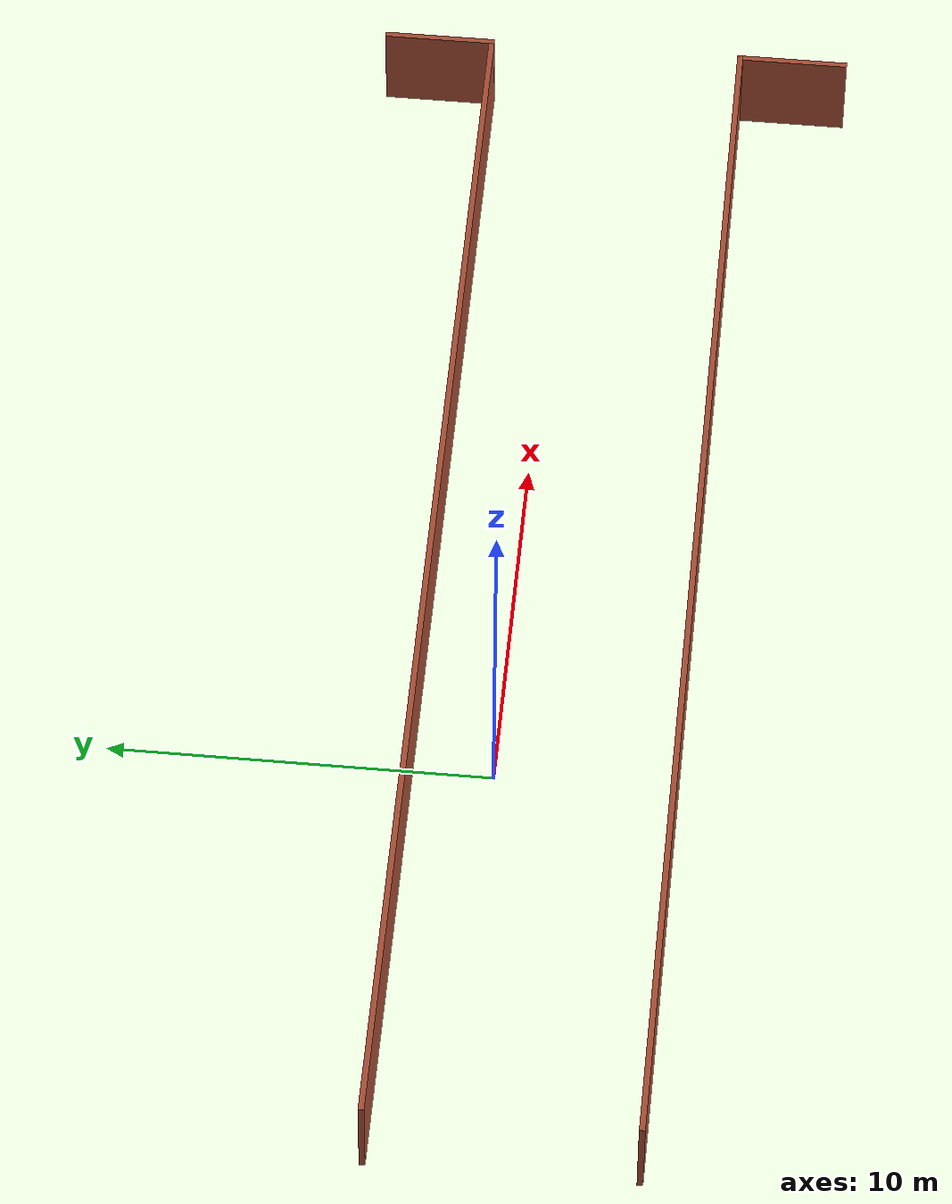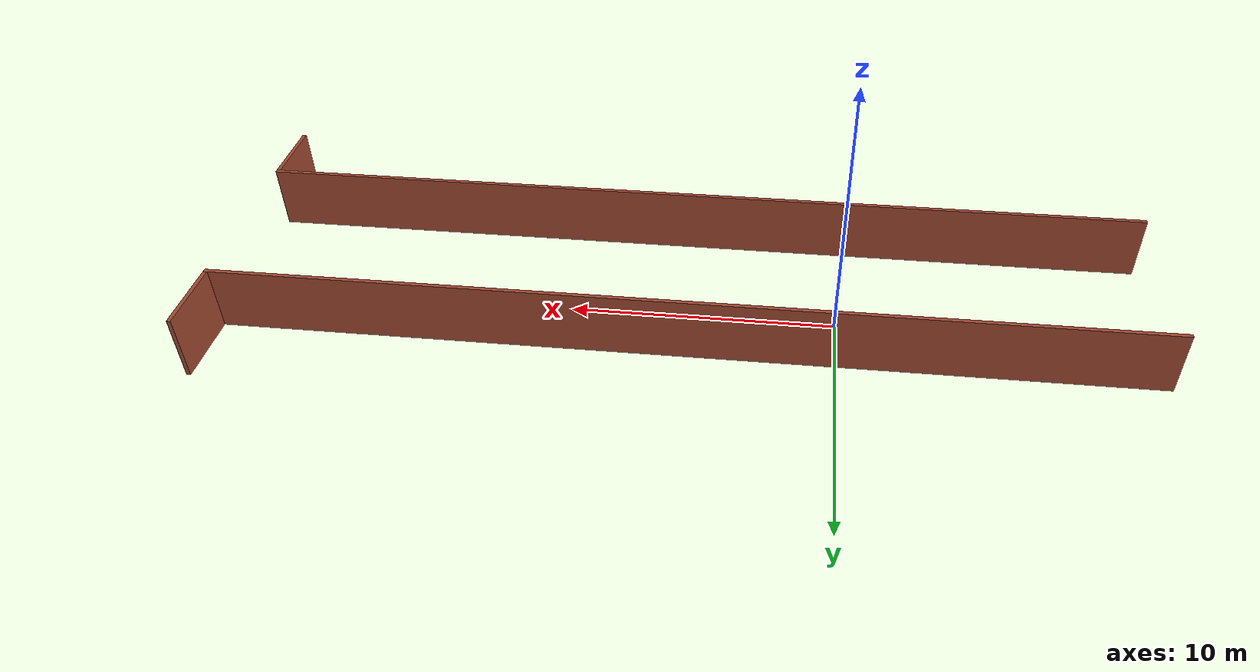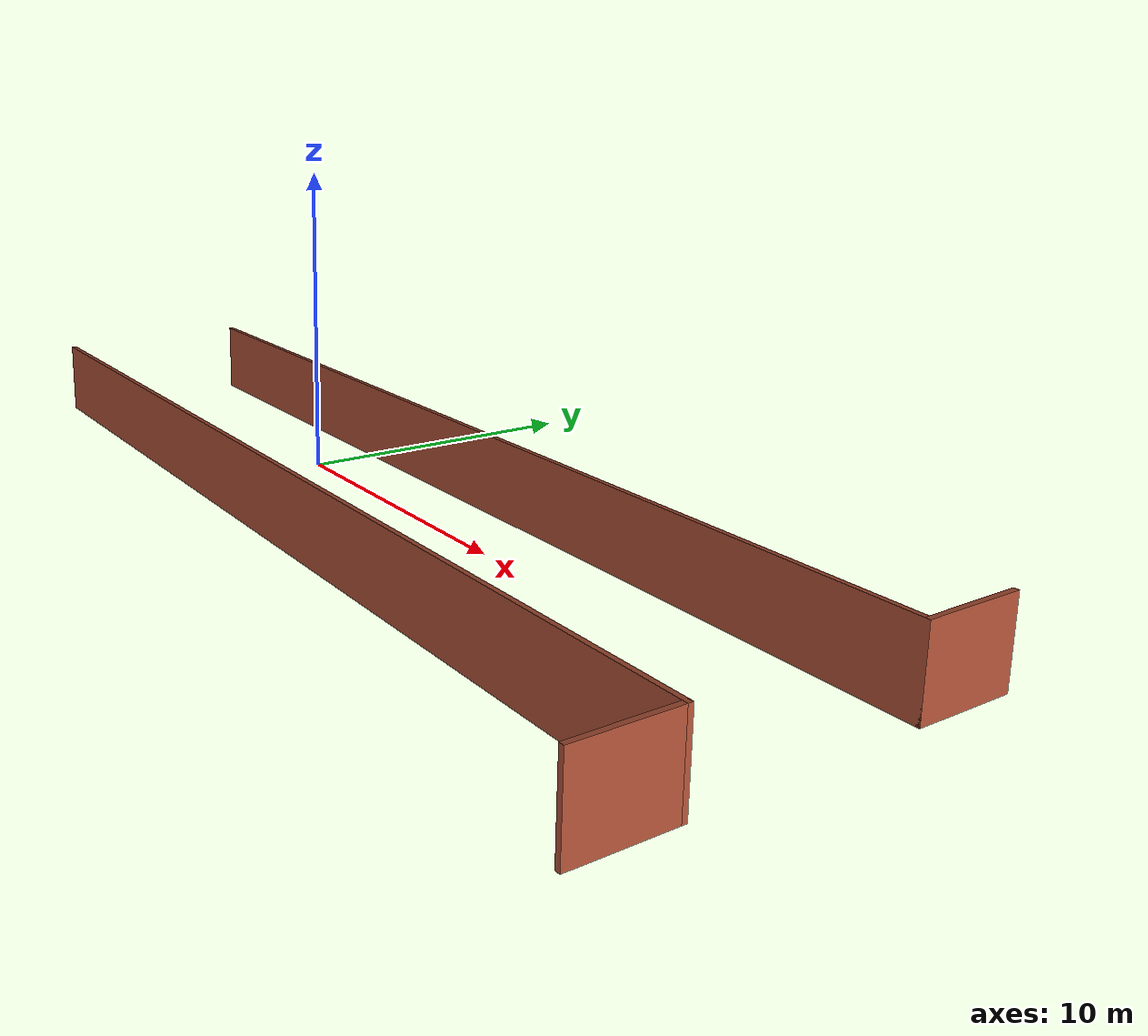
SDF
<?xml version='1.0'?>
<sdf version='1.6'>
  <model name='tunnel'>
    <pose frame=''>5.6218 -1.23861 0 0 -0 0</pose>
    <link name='Wall_10'>
      <collision name='Wall_10_Collision'>
        <geometry>
          <box>
            <size>3 0.15 2.5</size>
          </box>
        </geometry>
        <pose frame=''>0 0 1.25 0 -0 0</pose>
      </collision>
      <visual name='Wall_10_Visual'>
        <pose frame=''>0 0 1.25 0 -0 0</pose>
        <geometry>
          <box>
            <size>3 0.15 2.5</size>
          </box>
        </geometry>
        <material>
          <script>
            <uri>file://media/materials/scripts/gazebo.material</uri>
            <name>Gazebo/Bricks</name>
          </script>
          <ambient>1 1 1 1</ambient>
        </material>
        <meta>
          <layer>0</layer>
        </meta>
      </visual>
      <pose frame=''>17.3988 4.84431 0 0 -0 1.5708</pose>
    </link>
    <link name='Wall_18'>
      <collision name='Wall_18_Collision'>
        <geometry>
          <box>
            <size>35 0.15 2.5</size>
          </box>
        </geometry>
        <pose frame=''>0 0 1.25 0 -0 0</pose>
      </collision>
      <visual name='Wall_18_Visual'>
        <pose frame=''>0 0 1.25 0 -0 0</pose>
        <geometry>
          <box>
            <size>35 0.15 2.5</size>
          </box>
        </geometry>
        <material>
          <script>
            <uri>file://media/materials/scripts/gazebo.material</uri>
            <name>Gazebo/Bricks</name>
          </script>
          <ambient>1 1 1 1</ambient>
        </material>
        <meta>
          <layer>0</layer>
        </meta>
      </visual>
      <pose frame=''>0.026235 -3.41931 0 0 -0 0</pose>
    </link>
    <link name='Wall_19'>
      <collision name='Wall_19_Collision'>
        <geometry>
          <box>
            <size>3 0.15 2.5</size>
          </box>
        </geometry>
        <pose frame=''>0 0 1.25 0 -0 0</pose>
      </collision>
      <visual name='Wall_19_Visual'>
        <pose frame=''>0 0 1.25 0 -0 0</pose>
        <geometry>
          <box>
            <size>3 0.15 2.5</size>
          </box>
        </geometry>
        <material>
          <script>
            <uri>file://media/materials/scripts/gazebo.material</uri>
            <name>Gazebo/Bricks</name>
          </script>
          <ambient>1 1 1 1</ambient>
        </material>
        <meta>
          <layer>0</layer>
        </meta>
      </visual>
      <pose frame=''>17.4512 -4.84431 0 0 -0 -1.5708</pose>
    </link>
    <link name='Wall_9'>
      <collision name='Wall_9_Collision'>
        <geometry>
          <box>
            <size>35 0.15 2.5</size>
          </box>
        </geometry>
        <pose frame=''>0 0 1.25 0 -0 0</pose>
      </collision>
      <visual name='Wall_9_Visual'>
        <pose frame=''>0 0 1.25 0 -0 0</pose>
        <geometry>
          <box>
            <size>35 0.15 2.5</size>
          </box>
        </geometry>
        <material>
          <script>
            <uri>file://media/materials/scripts/gazebo.material</uri>
            <name>Gazebo/Bricks</name>
          </script>
          <ambient>1 1 1 1</ambient>
        </material>
        <meta>
          <layer>0</layer>
        </meta>
      </visual>
      <pose frame=''>-0.026235 3.41931 0 0 -0 0</pose>
    </link>
    <static>1</static>
  </model>
</sdf>
